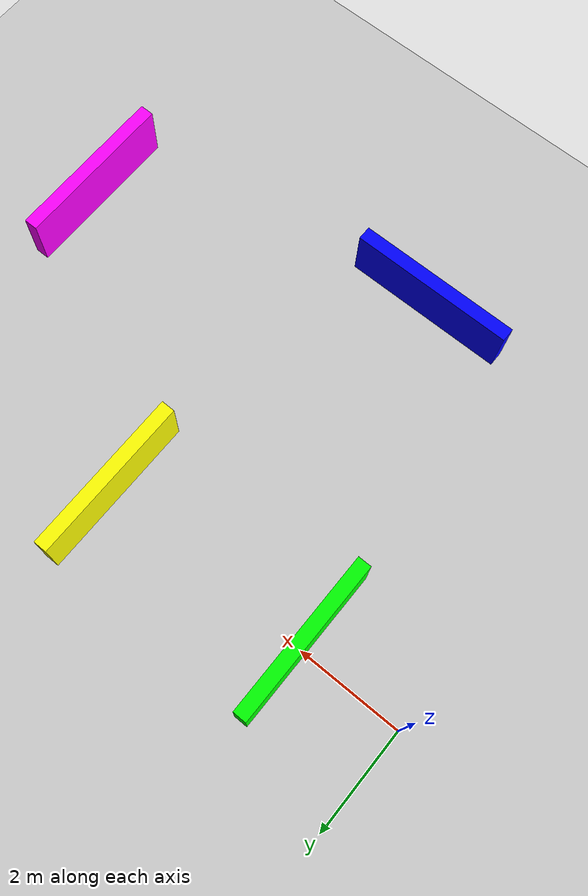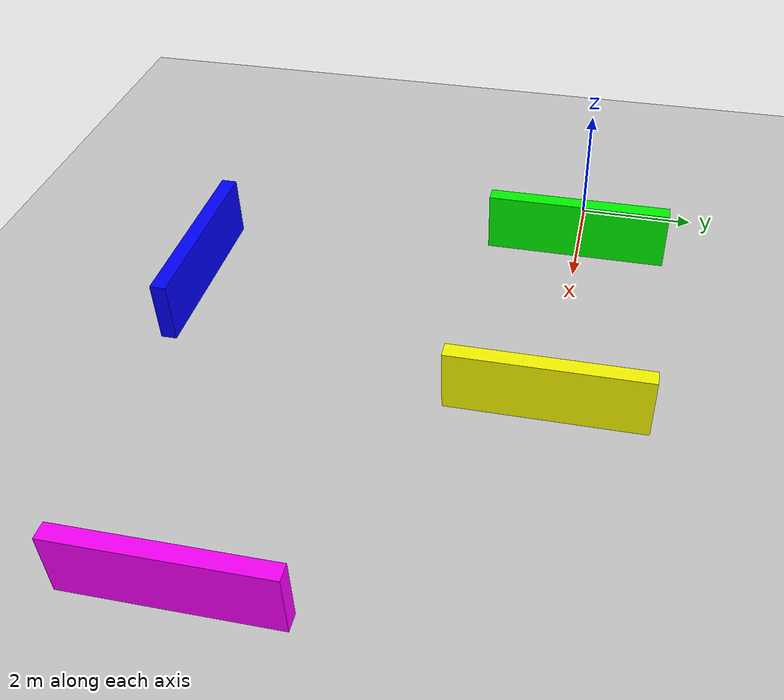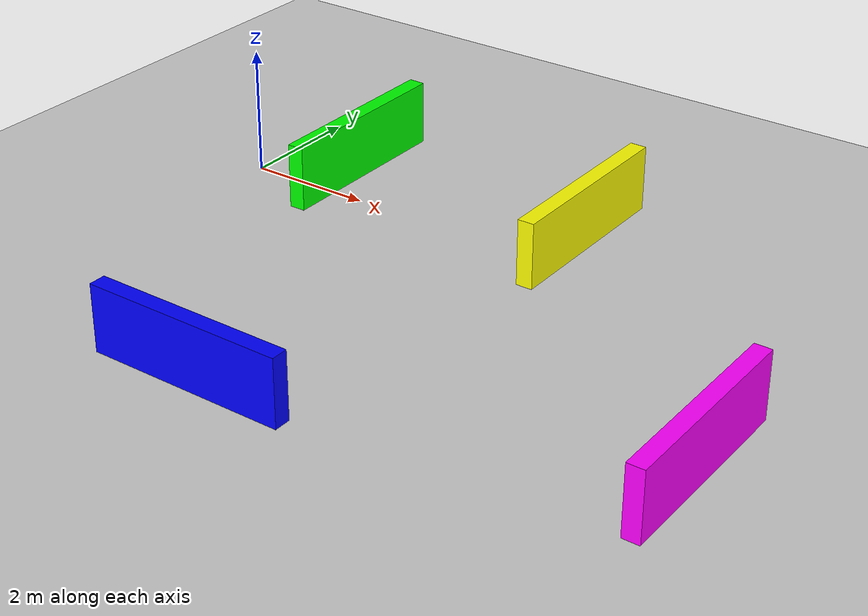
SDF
<?xml version="1.0" ?>
<sdf version="1.4">
  <world name="default">
    <!-- Global light source -->
    <light name='sun' type='directional'>
      <cast_shadows>1</cast_shadows>
      <pose>0 0 10 0 -0 0</pose>
      <diffuse>0.8 0.8 0.8 1</diffuse>
      <specular>0.2 0.2 0.2 1</specular>
      <attenuation>
        <range>1000</range>
        <constant>0.9</constant>
        <linear>0.01</linear>
        <quadratic>0.001</quadratic>
      </attenuation>
      <direction>0.5 0.1 -0.9</direction>
    </light>
    <!-- Ground plane -->
    <include>
      <uri>model://ground_plane</uri>
    </include>
    <scene>
      <ambient>0.4 0.4 0.4 1</ambient>
      <background>0.7 0.7 0.7 1</background>
      <shadows>1</shadows>
    </scene>
    <!-- Own physics settings to speed up simulation -->
    <gui fullscreen='0'>
      <camera name='camera_view'>
        <pose>10.0 0.0 20.0 0.0 1.3 3.14015</pose>
        <view_controller>orbit</view_controller>
      </camera>
    </gui>
    <!-- Models / Objects -->
    <model name="objects">
      <pose>0 0 0 0 0 0</pose>
      <static>true</static>
      <link name='link'>

      <visual name='forward_green'>
        <pose>2 0 1 0 0 0</pose>
        <geometry>
          <box>
            <size>0.25 3 1</size>
          </box>
        </geometry>
        <material>
          <ambient>0 1 0 1</ambient>
          <diffuse>0 1 0 1</diffuse>
          <specular>0.1 0.1 0.1 1</specular>
          <emissive>0 0 0 0</emissive>
        </material>
      </visual>

      <visual name='right_yellow'>
        <pose>6 0 1 0 0 0</pose>
        <geometry>
          <box>
            <size>0.25 3 1</size>
          </box>
        </geometry>
        <material>
          <ambient>1 1 0 1</ambient>
          <diffuse>1 1 0 1</diffuse>
          <specular>0.1 0.1 0.1 1</specular>
          <emissive>0 0 0 0</emissive>
        </material>
      </visual>

      <visual name='left_blue'>
        <pose>4 -6 1 0 0 1.57</pose>
        <geometry>
          <box>
            <size>0.25 3 1</size>
          </box>
        </geometry>
        <material>
          <ambient>0 0 1 1</ambient>
          <diffuse>0 0 1 1</diffuse>
          <specular>0.1 0.1 0.1 1</specular>
          <emissive>0 0 0 0</emissive>
        </material>
      </visual>

      <visual name='stop_red'>
        <pose>10 -4 1 0 0 0</pose>
        <geometry>
          <box>
            <size>0.25 3 1</size>
          </box>
        </geometry>
        <material>
          <ambient>1 0 0 1</ambient>
          <diffuse>1 0 01 1</diffuse>
          <specular>0.1 0.1 0.1 1</specular>
          <emissive>0 0 0 0</emissive>
        </material>
      </visual>

      </link>
     </model>
  </world>
</sdf>
